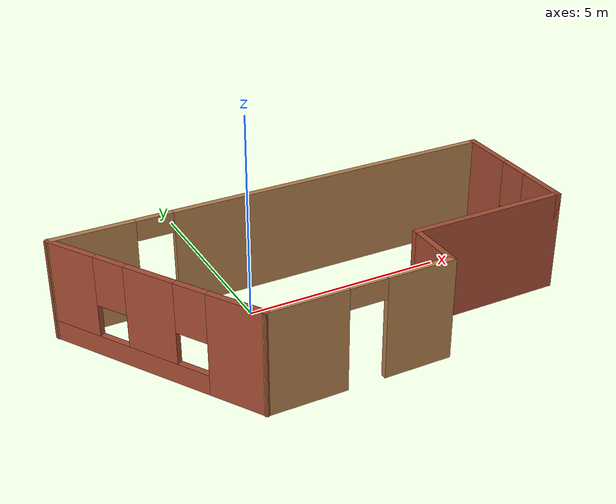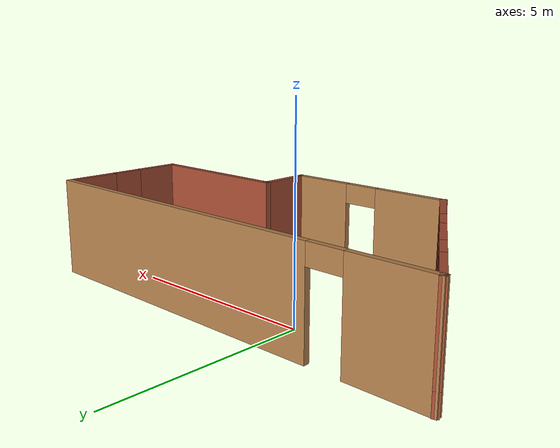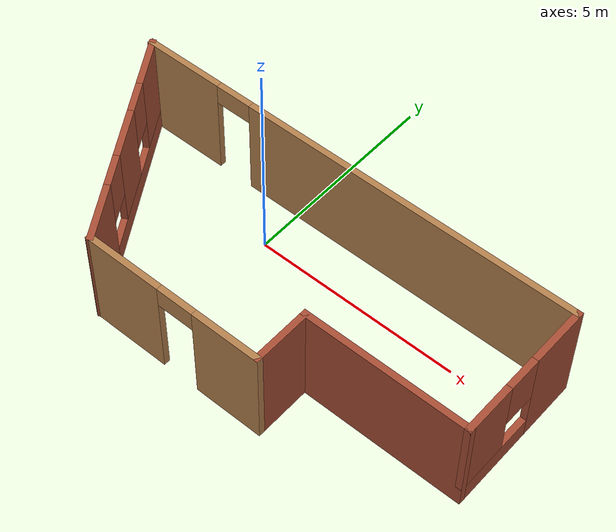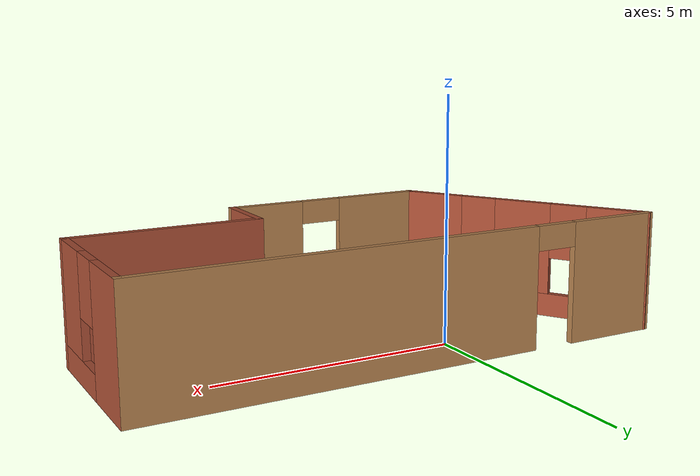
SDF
<?xml version='1.0'?>
<sdf version='1.7'>
  <model name='entorno_gazebo'>
    <pose>1.32398 -1.21841 0 0 -0 0</pose>
    <link name='Wall_0'>
      <pose>0.014105 2.35 0 0 -0 0</pose>
      <visual name='Wall_0_Visual_0'>
        <pose>-4.60569 0 1.25 0 -0 0</pose>
        <geometry>
          <box>
            <size>2.03863 0.15 2.5</size>
          </box>
        </geometry>
        <material>
          <script>
            <uri>file://media/materials/scripts/gazebo.material</uri>
            <name>Gazebo/Wood</name>
          </script>
          <ambient>1 1 1 1</ambient>
        </material>
        <meta>
          <layer>0</layer>
        </meta>
      </visual>
      <collision name='Wall_0_Collision_0'>
        <geometry>
          <box>
            <size>2.03863 0.15 2.5</size>
          </box>
        </geometry>
        <pose>-4.60569 0 1.25 0 -0 0</pose>
      </collision>
      <visual name='Wall_0_Visual_1'>
        <pose>1.46931 0 1.25 0 -0 0</pose>
        <geometry>
          <box>
            <size>8.31137 0.15 2.5</size>
          </box>
        </geometry>
        <material>
          <script>
            <uri>file://media/materials/scripts/gazebo.material</uri>
            <name>Gazebo/Wood</name>
          </script>
          <ambient>1 1 1 1</ambient>
        </material>
        <meta>
          <layer>0</layer>
        </meta>
      </visual>
      <collision name='Wall_0_Collision_1'>
        <geometry>
          <box>
            <size>8.31137 0.15 2.5</size>
          </box>
        </geometry>
        <pose>1.46931 0 1.25 0 -0 0</pose>
      </collision>
      <visual name='Wall_0_Visual_2'>
        <pose>-3.13637 0 2.25 0 -0 0</pose>
        <geometry>
          <box>
            <size>0.9 0.15 0.5</size>
          </box>
        </geometry>
        <material>
          <script>
            <uri>file://media/materials/scripts/gazebo.material</uri>
            <name>Gazebo/Wood</name>
          </script>
          <ambient>1 1 1 1</ambient>
        </material>
        <meta>
          <layer>0</layer>
        </meta>
      </visual>
      <collision name='Wall_0_Collision_2'>
        <geometry>
          <box>
            <size>0.9 0.15 0.5</size>
          </box>
        </geometry>
        <pose>-3.13637 0 2.25 0 -0 0</pose>
      </collision>
    </link>
    <link name='Wall_1'>
      <pose>5.5641 0.675 0 0 -0 -1.5708</pose>
      <visual name='Wall_1_Visual_0'>
        <pose>-1.0275 0 1.25 0 -0 0</pose>
        <geometry>
          <box>
            <size>1.44499 0.15 2.5</size>
          </box>
        </geometry>
        <material>
          <script>
            <uri>file://media/materials/scripts/gazebo.material</uri>
            <name>Gazebo/Bricks</name>
          </script>
          <ambient>1 1 1 1</ambient>
        </material>
        <meta>
          <layer>0</layer>
        </meta>
      </visual>
      <collision name='Wall_1_Collision_0'>
        <geometry>
          <box>
            <size>1.44499 0.15 2.5</size>
          </box>
        </geometry>
        <pose>-1.0275 0 1.25 0 -0 0</pose>
      </collision>
      <visual name='Wall_1_Visual_1'>
        <pose>0.722497 0 0.25 0 -0 0</pose>
        <geometry>
          <box>
            <size>2.05501 0.15 0.5</size>
          </box>
        </geometry>
        <material>
          <script>
            <uri>file://media/materials/scripts/gazebo.material</uri>
            <name>Gazebo/Bricks</name>
          </script>
          <ambient>1 1 1 1</ambient>
        </material>
        <meta>
          <layer>0</layer>
        </meta>
      </visual>
      <collision name='Wall_1_Collision_1'>
        <geometry>
          <box>
            <size>2.05501 0.15 0.5</size>
          </box>
        </geometry>
        <pose>0.722497 0 0.25 0 -0 0</pose>
      </collision>
      <visual name='Wall_1_Visual_2'>
        <pose>1.1225 0 1.5 0 -0 0</pose>
        <geometry>
          <box>
            <size>1.25501 0.15 2</size>
          </box>
        </geometry>
        <material>
          <script>
            <uri>file://media/materials/scripts/gazebo.material</uri>
            <name>Gazebo/Bricks</name>
          </script>
          <ambient>1 1 1 1</ambient>
        </material>
        <meta>
          <layer>0</layer>
        </meta>
      </visual>
      <collision name='Wall_1_Collision_2'>
        <geometry>
          <box>
            <size>1.25501 0.15 2</size>
          </box>
        </geometry>
        <pose>1.1225 0 1.5 0 -0 0</pose>
      </collision>
      <visual name='Wall_1_Visual_3'>
        <pose>0.094994 0 1.9 0 -0 0</pose>
        <geometry>
          <box>
            <size>0.8 0.15 1.2</size>
          </box>
        </geometry>
        <material>
          <script>
            <uri>file://media/materials/scripts/gazebo.material</uri>
            <name>Gazebo/Bricks</name>
          </script>
          <ambient>1 1 1 1</ambient>
        </material>
        <meta>
          <layer>0</layer>
        </meta>
      </visual>
      <collision name='Wall_1_Collision_3'>
        <geometry>
          <box>
            <size>0.8 0.15 1.2</size>
          </box>
        </geometry>
        <pose>0.094994 0 1.9 0 -0 0</pose>
      </collision>
    </link>
    <link name='Wall_2'>
      <collision name='Wall_2_Collision'>
        <geometry>
          <box>
            <size>4 0.15 2.5</size>
          </box>
        </geometry>
        <pose>0 0 1.25 0 -0 0</pose>
      </collision>
      <visual name='Wall_2_Visual'>
        <pose>0 0 1.25 0 -0 0</pose>
        <geometry>
          <box>
            <size>4 0.15 2.5</size>
          </box>
        </geometry>
        <material>
          <script>
            <uri>file://media/materials/scripts/gazebo.material</uri>
            <name>Gazebo/Bricks</name>
          </script>
          <ambient>1 1 1 1</ambient>
        </material>
        <meta>
          <layer>0</layer>
        </meta>
      </visual>
      <pose>3.6391 -1 0 0 -0 3.14159</pose>
    </link>
    <link name='Wall_3'>
      <collision name='Wall_3_Collision'>
        <geometry>
          <box>
            <size>1.5 0.15 2.5</size>
          </box>
        </geometry>
        <pose>0 0 1.25 0 -0 0</pose>
      </collision>
      <visual name='Wall_3_Visual'>
        <pose>0 0 1.25 0 -0 0</pose>
        <geometry>
          <box>
            <size>1.5 0.15 2.5</size>
          </box>
        </geometry>
        <material>
          <script>
            <uri>file://media/materials/scripts/gazebo.material</uri>
            <name>Gazebo/Bricks</name>
          </script>
          <ambient>1 1 1 1</ambient>
        </material>
        <meta>
          <layer>0</layer>
        </meta>
      </visual>
      <pose>1.7141 -1.675 0 0 -0 -1.5708</pose>
    </link>
    <link name='Wall_4'>
      <pose>-0.460895 -2.35 0 0 -0 3.14159</pose>
      <visual name='Wall_4_Visual_0'>
        <pose>-1.41721 0 1.25 0 -0 0</pose>
        <geometry>
          <box>
            <size>1.66559 0.15 2.5</size>
          </box>
        </geometry>
        <material>
          <script>
            <uri>file://media/materials/scripts/gazebo.material</uri>
            <name>Gazebo/Wood</name>
          </script>
          <ambient>1 1 1 1</ambient>
        </material>
        <meta>
          <layer>0</layer>
        </meta>
      </visual>
      <collision name='Wall_4_Collision_0'>
        <geometry>
          <box>
            <size>1.66559 0.15 2.5</size>
          </box>
        </geometry>
        <pose>-1.41721 0 1.25 0 -0 0</pose>
      </collision>
      <visual name='Wall_4_Visual_1'>
        <pose>1.28279 0 1.25 0 -0 0</pose>
        <geometry>
          <box>
            <size>1.93441 0.15 2.5</size>
          </box>
        </geometry>
        <material>
          <script>
            <uri>file://media/materials/scripts/gazebo.material</uri>
            <name>Gazebo/Wood</name>
          </script>
          <ambient>1 1 1 1</ambient>
        </material>
        <meta>
          <layer>0</layer>
        </meta>
      </visual>
      <collision name='Wall_4_Collision_1'>
        <geometry>
          <box>
            <size>1.93441 0.15 2.5</size>
          </box>
        </geometry>
        <pose>1.28279 0 1.25 0 -0 0</pose>
      </collision>
      <visual name='Wall_4_Visual_2'>
        <pose>-0.134415 0 2.25 0 -0 0</pose>
        <geometry>
          <box>
            <size>0.9 0.15 0.5</size>
          </box>
        </geometry>
        <material>
          <script>
            <uri>file://media/materials/scripts/gazebo.material</uri>
            <name>Gazebo/Wood</name>
          </script>
          <ambient>1 1 1 1</ambient>
        </material>
        <meta>
          <layer>0</layer>
        </meta>
      </visual>
      <collision name='Wall_4_Collision_2'>
        <geometry>
          <box>
            <size>0.9 0.15 0.5</size>
          </box>
        </geometry>
        <pose>-0.134415 0 2.25 0 -0 0</pose>
      </collision>
    </link>
    <link name='Wall_5'>
      <pose>-4.08589 0 0 0 -0 2.12364</pose>
      <visual name='Wall_5_Visual_0'>
        <pose>-2.11258 0 1.25 0 -0 0</pose>
        <geometry>
          <box>
            <size>1.44752 0.15 2.5</size>
          </box>
        </geometry>
        <material>
          <script>
            <uri>file://media/materials/scripts/gazebo.material</uri>
            <name>Gazebo/Bricks</name>
          </script>
          <ambient>1 1 1 1</ambient>
        </material>
        <meta>
          <layer>0</layer>
        </meta>
      </visual>
      <collision name='Wall_5_Collision_0'>
        <geometry>
          <box>
            <size>1.44752 0.15 2.5</size>
          </box>
        </geometry>
        <pose>-2.11258 0 1.25 0 -0 0</pose>
      </collision>
      <visual name='Wall_5_Visual_1'>
        <pose>0.723759 0 0.25 0 -0 0</pose>
        <geometry>
          <box>
            <size>4.22516 0.15 0.5</size>
          </box>
        </geometry>
        <material>
          <script>
            <uri>file://media/materials/scripts/gazebo.material</uri>
            <name>Gazebo/Bricks</name>
          </script>
          <ambient>1 1 1 1</ambient>
        </material>
        <meta>
          <layer>0</layer>
        </meta>
      </visual>
      <collision name='Wall_5_Collision_1'>
        <geometry>
          <box>
            <size>4.22516 0.15 0.5</size>
          </box>
        </geometry>
        <pose>0.723759 0 0.25 0 -0 0</pose>
      </collision>
      <visual name='Wall_5_Visual_2'>
        <pose>0.051514 0 1.5 0 -0 0</pose>
        <geometry>
          <box>
            <size>1.28067 0.15 2</size>
          </box>
        </geometry>
        <material>
          <script>
            <uri>file://media/materials/scripts/gazebo.material</uri>
            <name>Gazebo/Bricks</name>
          </script>
          <ambient>1 1 1 1</ambient>
        </material>
        <meta>
          <layer>0</layer>
        </meta>
      </visual>
      <collision name='Wall_5_Collision_2'>
        <geometry>
          <box>
            <size>1.28067 0.15 2</size>
          </box>
        </geometry>
        <pose>0.051514 0 1.5 0 -0 0</pose>
      </collision>
      <visual name='Wall_5_Visual_3'>
        <pose>2.1641 0 1.5 0 -0 0</pose>
        <geometry>
          <box>
            <size>1.34449 0.15 2</size>
          </box>
        </geometry>
        <material>
          <script>
            <uri>file://media/materials/scripts/gazebo.material</uri>
            <name>Gazebo/Bricks</name>
          </script>
          <ambient>1 1 1 1</ambient>
        </material>
        <meta>
          <layer>0</layer>
        </meta>
      </visual>
      <collision name='Wall_5_Collision_3'>
        <geometry>
          <box>
            <size>1.34449 0.15 2</size>
          </box>
        </geometry>
        <pose>2.1641 0 1.5 0 -0 0</pose>
      </collision>
      <visual name='Wall_5_Visual_4'>
        <pose>-0.988822 0 1.9 0 -0 0</pose>
        <geometry>
          <box>
            <size>0.8 0.15 1.2</size>
          </box>
        </geometry>
        <material>
          <script>
            <uri>file://media/materials/scripts/gazebo.material</uri>
            <name>Gazebo/Bricks</name>
          </script>
          <ambient>1 1 1 1</ambient>
        </material>
        <meta>
          <layer>0</layer>
        </meta>
      </visual>
      <collision name='Wall_5_Collision_4'>
        <geometry>
          <box>
            <size>0.8 0.15 1.2</size>
          </box>
        </geometry>
        <pose>-0.988822 0 1.9 0 -0 0</pose>
      </collision>
      <visual name='Wall_5_Visual_5'>
        <pose>1.09185 0 1.9 0 -0 0</pose>
        <geometry>
          <box>
            <size>0.8 0.15 1.2</size>
          </box>
        </geometry>
        <material>
          <script>
            <uri>file://media/materials/scripts/gazebo.material</uri>
            <name>Gazebo/Bricks</name>
          </script>
          <ambient>1 1 1 1</ambient>
        </material>
        <meta>
          <layer>0</layer>
        </meta>
      </visual>
      <collision name='Wall_5_Collision_5'>
        <geometry>
          <box>
            <size>0.8 0.15 1.2</size>
          </box>
        </geometry>
        <pose>1.09185 0 1.9 0 -0 0</pose>
      </collision>
    </link>
    <static>1</static>
  </model>
</sdf>
